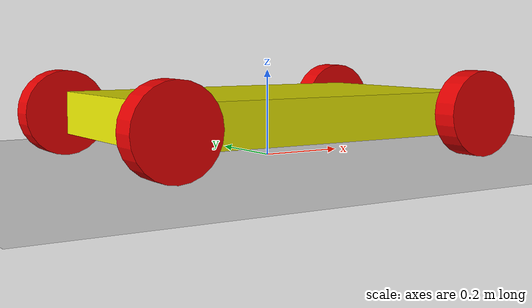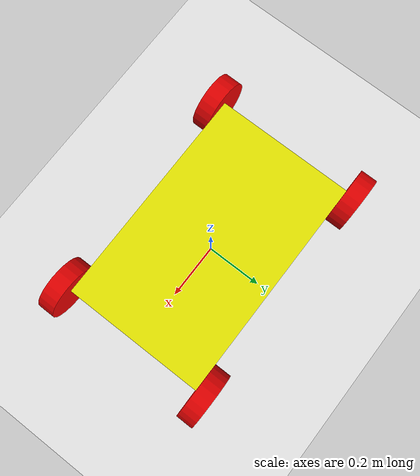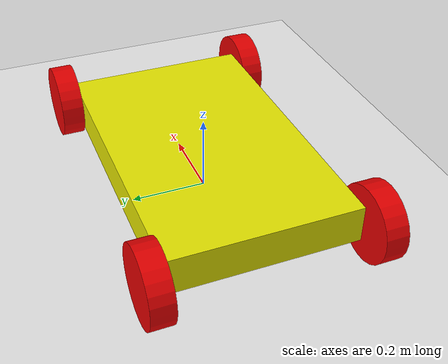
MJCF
<mujoco>
    <option gravity = "0 0 -9.8"/>
    <worldbody>
        <light diffuse=".5 .5 .5" pos="0 0 3" dir="0 0 -1"/>
        <geom type="plane" size="5 5 0.3" rgba=".9 .9 .9 1"/>
        <body name = "body" pos="0 0 .1" euler= '0 90 0' >
            <joint type="free"/>
            <geom type="box" size=".05 .25 .4" rgba=".9 .9 0 1"/>
            <body pos="0 .28 .4" euler= '90 0 0' >
                <joint name="w1" type="hinge"/>
                <geom type="cylinder" size=".1 .03" rgba=".9 0 0 1"/>
            </body>
            <body pos="0 -.28 .4" euler= '90 0 0' >
                <joint name="w2" type="hinge"/>
                <geom type="cylinder" size=".1 .03" rgba=".9 0 0 1"/>
            </body>
            <body pos="0 -.28 -.4" euler= '90 0 0' >
                <joint name="w3" type="hinge"/>
                <geom type="cylinder" size=".1 .03" rgba=".9 0 0 1"/>
            </body>
            <body pos="0 .28 -.4" euler= '90 0 0' >
                <joint name="w4" type="hinge"/>
                <geom type="cylinder" size=".1 .03" rgba=".9 0 0 1"/>
            </body>
        </body>
    </worldbody>
    <actuator>
        <velocity name= "wheel1-vel" joint = "w1" kv = "100" />
        <velocity name= "wheel2-vel" joint = "w2" kv = "100" />
        <velocity name= "wheel3-vel" joint = "w3" kv = "100" />
        <velocity name= "wheel4-vel" joint = "w4" kv = "100" />
    </actuator>
</mujoco>
